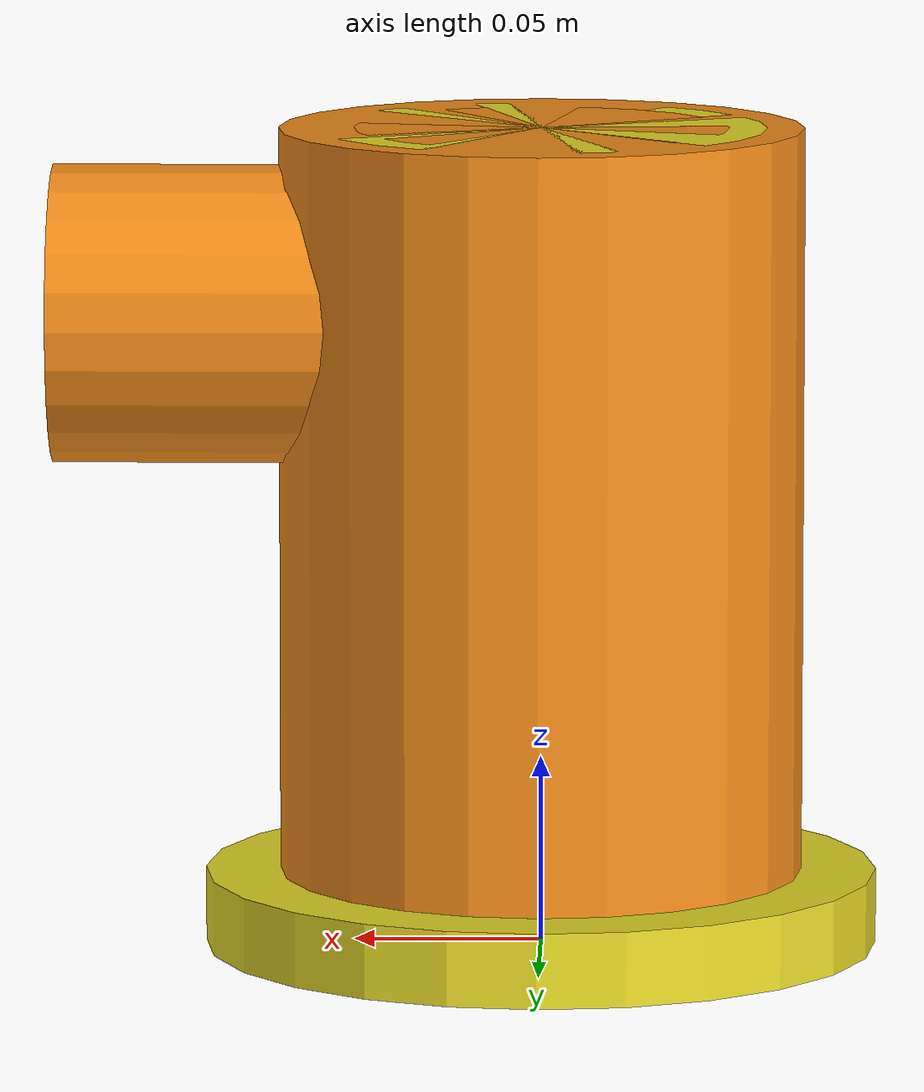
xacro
<?xml version="1.0"?>
<robot name="my_robot" xmlns:xacro="http://www.ros.org/wiki/xacro">

    <xacro:macro name="cylinder_link" params="name material radius length">
        <link name="${name}">
            <visual>
                <geometry>
                    <cylinder radius="${radius}" length="${length}" />
                </geometry>
                <origin xyz="0 0 ${length / 2.0}" rpy="0 0 0" />
                <material name="${material}" />
            </visual>
            <collision>
                <geometry>
                    <cylinder radius="${radius}" length="${length}"/>
                </geometry>
                <origin xyz="0 0 ${length / 2.0}" rpy="0 0 0" />
            </collision>
        <xacro:cylinder_inertia m="0.3" r="${radius}" h="${length}"
                        o_xyz="0 0 ${length / 2.0}" o_rpy="0 0 0" />
        </link>
    </xacro:macro>

    <xacro:cylinder_link name="arm_base_link" material="yellow" radius="0.09" length="0.02" />
    <xacro:cylinder_link name="vertical_prismatic_link1" material="orange" radius="0.07" length="0.2" />
    <xacro:cylinder_link name="vertical_prismatic_link2" material="yellow" radius="0.06" length="0.2" />
    <xacro:cylinder_link name="vertical_prismatic_link3" material="orange" radius="0.05" length="0.2" />

    <xacro:cylinder_link name="horizontal_prismatic_link1" material="orange" radius="0.04" length="0.16" />
    <xacro:cylinder_link name="horizontal_prismatic_link2" material="yellow" radius="0.03" length="0.16" />
    <xacro:cylinder_link name="horizontal_prismatic_link3" material="orange" radius="0.02" length="0.16" />

    <joint name="arm_base_prismatic1_joint" type="fixed">
        <parent link="arm_base_link" />
        <child link="vertical_prismatic_link1" />
        <origin xyz="0 0 0.02" rpy="0 0 0" />
        <axis xyz="0 0 1" />
    </joint>

    <joint name="vertical_prismatic1_2_joint" type="prismatic">
        <parent link="vertical_prismatic_link1" />
        <child link="vertical_prismatic_link2" />
        <origin xyz="0 0 0" rpy="0 0 0" />
        <axis xyz="0 0 1" />
        <limit lower="0" upper="0.16" effort="100" velocity="100" />
        <dynamics friction="0.3" damping="0.3" />
    </joint>

    <joint name="vertical_prismatic2_3_joint" type="prismatic">
        <parent link="vertical_prismatic_link2" />
        <child link="vertical_prismatic_link3" />
        <origin xyz="0 0 0" rpy="0 0 0" />
        <axis xyz="0 0 1" />
        <mimic joint="vertical_prismatic1_2_joint" multiplier="1" offset="0"/>
        <limit lower="0" upper="0.16" effort="100" velocity="100" />
        <dynamics friction="0.3" damping="0.3" />
    </joint>

    <joint name="horizontal_vertical_prismatic_joint" type="fixed">
        <parent link="vertical_prismatic_link3" />
        <child link="horizontal_prismatic_link1" />
        <origin xyz="-0.03 0 ${0.2 - 0.05}" rpy="0 ${pi/2} 0" />
    </joint>

    <joint name="horizontal_prismatic1_2_joint" type="prismatic">
        <parent link="horizontal_prismatic_link1" />
        <child link="horizontal_prismatic_link2" />
        <origin xyz="0 0 0" rpy="0 0 0" />
        <axis xyz="0 0 1" />
        <limit lower="0" upper="0.16" effort="100" velocity="100" />
        <dynamics friction="0.3" damping="0.3" />
    </joint>

    <joint name="horizontal_prismatic2_3_joint" type="prismatic">
        <parent link="horizontal_prismatic_link2" />
        <child link="horizontal_prismatic_link3" />
        <origin xyz="0 0 0" rpy="0 0 0" />
        <axis xyz="0 0 1" />
        <mimic joint="horizontal_prismatic1_2_joint" multiplier="1" offset="0"/>
        <limit lower="0" upper="0.16" effort="100" velocity="100" />
        <dynamics friction="0.3" damping="0.3" />
    </joint>

</robot>
